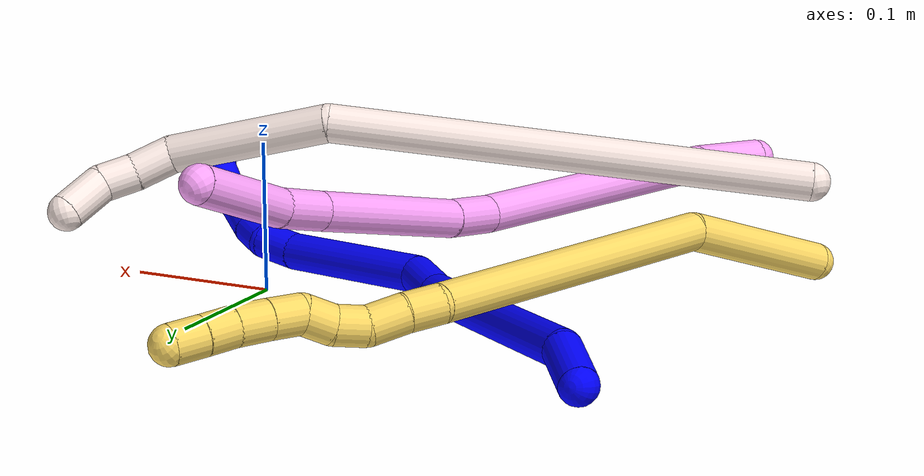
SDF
<sdf version="1.7">
 <world name="default">
  <model name="1">
   <static>0</static>
   <link name="1">
    <collision name="collision-cylinder-e_1_1_4">
     <pose>0.014006 0.000355 0.014058 -0.025251 0.783366 -0.01043</pose>
     <geometry><cylinder><radius>0.0125</radius><length>0.039695</length></cylinder></geometry>
     <surface>
      <friction><ode><mu>1.16</mu><mu2>1.16</mu2><slip1>0</slip1><slip2>0</slip2></ode></friction>
      <contact><ode><kp>1e+06</kp><kd>1</kd><max_vel>0</max_vel><min_depth>0.001</min_depth></ode></contact>
     </surface>
    </collision>
    <visual name="visual-cylinder-e_1_1_4">
     <pose>0.014006 0.000355 0.014058 -0.025251 0.783366 -0.01043</pose>
     <geometry><cylinder><radius>0.0125</radius><length>0.039695</length></cylinder></geometry>
     <material><ambient>0 0 1 1</ambient></material>
    </visual>
    <collision name="collision-cylinder-e_2_4_5">
     <pose>0.089215 -0.030558 0.082302 0.523384 0.774441 0.217588</pose>
     <geometry><cylinder><radius>0.0125</radius><length>0.175038</length></cylinder></geometry>
     <surface>
      <friction><ode><mu>1.16</mu><mu2>1.16</mu2><slip1>0</slip1><slip2>0</slip2></ode></friction>
      <contact><ode><kp>1e+06</kp><kd>1</kd><max_vel>0</max_vel><min_depth>0.001</min_depth></ode></contact>
     </surface>
    </collision>
    <visual name="visual-cylinder-e_2_4_5">
     <pose>0.089215 -0.030558 0.082302 0.523384 0.774441 0.217588</pose>
     <geometry><cylinder><radius>0.0125</radius><length>0.175038</length></cylinder></geometry>
     <material><ambient>0 0 1 1</ambient></material>
    </visual>
    <collision name="collision-cylinder-e_3_5_6">
     <pose>0.163448 -0.065194 0.147237 0.30358 0.85785 0.139682</pose>
     <geometry><cylinder><radius>0.0125</radius><length>0.034448</length></cylinder></geometry>
     <surface>
      <friction><ode><mu>1.16</mu><mu2>1.16</mu2><slip1>0</slip1><slip2>0</slip2></ode></friction>
      <contact><ode><kp>1e+06</kp><kd>1</kd><max_vel>0</max_vel><min_depth>0.001</min_depth></ode></contact>
     </surface>
    </collision>
    <visual name="visual-cylinder-e_3_5_6">
     <pose>0.163448 -0.065194 0.147237 0.30358 0.85785 0.139682</pose>
     <geometry><cylinder><radius>0.0125</radius><length>0.034448</length></cylinder></geometry>
     <material><ambient>0 0 1 1</ambient></material>
    </visual>
    <collision name="collision-cylinder-e_4_6_7">
     <pose>0.222959 -0.09494 0.170505 1.12773 1.00993 0.67253</pose>
     <geometry><cylinder><radius>0.0125</radius><length>0.109783</length></cylinder></geometry>
     <surface>
      <friction><ode><mu>1.16</mu><mu2>1.16</mu2><slip1>0</slip1><slip2>0</slip2></ode></friction>
      <contact><ode><kp>1e+06</kp><kd>1</kd><max_vel>0</max_vel><min_depth>0.001</min_depth></ode></contact>
     </surface>
    </collision>
    <visual name="visual-cylinder-e_4_6_7">
     <pose>0.222959 -0.09494 0.170505 1.12773 1.00993 0.67253</pose>
     <geometry><cylinder><radius>0.0125</radius><length>0.109783</length></cylinder></geometry>
     <material><ambient>0 0 1 1</ambient></material>
    </visual>
    <collision name="collision-cylinder-e_5_7_8">
     <pose>0.282149 -0.126117 0.184978 1.18383 1.18366 0.848945</pose>
     <geometry><cylinder><radius>0.0125</radius><length>0.027447</length></cylinder></geometry>
     <surface>
      <friction><ode><mu>1.16</mu><mu2>1.16</mu2><slip1>0</slip1><slip2>0</slip2></ode></friction>
      <contact><ode><kp>1e+06</kp><kd>1</kd><max_vel>0</max_vel><min_depth>0.001</min_depth></ode></contact>
     </surface>
    </collision>
    <visual name="visual-cylinder-e_5_7_8">
     <pose>0.282149 -0.126117 0.184978 1.18383 1.18366 0.848945</pose>
     <geometry><cylinder><radius>0.0125</radius><length>0.027447</length></cylinder></geometry>
     <material><ambient>0 0 1 1</ambient></material>
    </visual>
    <collision name="collision-cylinder-e_6_8_9">
     <pose>0.303941 -0.132624 0.191952 0.328146 1.04255 0.18958</pose>
     <geometry><cylinder><radius>0.0125</radius><length>0.021036</length></cylinder></geometry>
     <surface>
      <friction><ode><mu>1.16</mu><mu2>1.16</mu2><slip1>0</slip1><slip2>0</slip2></ode></friction>
      <contact><ode><kp>1e+06</kp><kd>1</kd><max_vel>0</max_vel><min_depth>0.001</min_depth></ode></contact>
     </surface>
    </collision>
    <visual name="visual-cylinder-e_6_8_9">
     <pose>0.303941 -0.132624 0.191952 0.328146 1.04255 0.18958</pose>
     <geometry><cylinder><radius>0.0125</radius><length>0.021036</length></cylinder></geometry>
     <material><ambient>0 0 1 1</ambient></material>
    </visual>
    <collision name="collision-cylinder-e_7_9_10">
     <pose>0.324826 -0.133435 0.203039 -0.146747 1.09143 -0.089209</pose>
     <geometry><cylinder><radius>0.0125</radius><length>0.026599</length></cylinder></geometry>
     <surface>
      <friction><ode><mu>1.16</mu><mu2>1.16</mu2><slip1>0</slip1><slip2>0</slip2></ode></friction>
      <contact><ode><kp>1e+06</kp><kd>1</kd><max_vel>0</max_vel><min_depth>0.001</min_depth></ode></contact>
     </surface>
    </collision>
    <visual name="visual-cylinder-e_7_9_10">
     <pose>0.324826 -0.133435 0.203039 -0.146747 1.09143 -0.089209</pose>
     <geometry><cylinder><radius>0.0125</radius><length>0.026599</length></cylinder></geometry>
     <material><ambient>0 0 1 1</ambient></material>
    </visual>
    <collision name="collision-cylinder-e_8_10_11">
     <pose>0.345293 -0.133079 0.214321 0.103287 1.02676 0.058269</pose>
     <geometry><cylinder><radius>0.0125</radius><length>0.020258</length></cylinder></geometry>
     <surface>
      <friction><ode><mu>1.16</mu><mu2>1.16</mu2><slip1>0</slip1><slip2>0</slip2></ode></friction>
      <contact><ode><kp>1e+06</kp><kd>1</kd><max_vel>0</max_vel><min_depth>0.001</min_depth></ode></contact>
     </surface>
    </collision>
    <visual name="visual-cylinder-e_8_10_11">
     <pose>0.345293 -0.133079 0.214321 0.103287 1.02676 0.058269</pose>
     <geometry><cylinder><radius>0.0125</radius><length>0.020258</length></cylinder></geometry>
     <material><ambient>0 0 1 1</ambient></material>
    </visual>
    <collision name="collision-cylinder-e_9_11_12">
     <pose>0.364605 -0.130731 0.224284 -0.546473 1.08967 -0.336458</pose>
     <geometry><cylinder><radius>0.0125</radius><length>0.024018</length></cylinder></geometry>
     <surface>
      <friction><ode><mu>1.16</mu><mu2>1.16</mu2><slip1>0</slip1><slip2>0</slip2></ode></friction>
      <contact><ode><kp>1e+06</kp><kd>1</kd><max_vel>0</max_vel><min_depth>0.001</min_depth></ode></contact>
     </surface>
    </collision>
    <visual name="visual-cylinder-e_9_11_12">
     <pose>0.364605 -0.130731 0.224284 -0.546473 1.08967 -0.336458</pose>
     <geometry><cylinder><radius>0.0125</radius><length>0.024018</length></cylinder></geometry>
     <material><ambient>0 0 1 1</ambient></material>
    </visual>
    <collision name="collision-cylinder-e_10_12_2">
     <pose>0.382175 -0.125233 0.236952 -0.31836 0.693014 -0.115803</pose>
     <geometry><cylinder><radius>0.0125</radius><length>0.021677</length></cylinder></geometry>
     <surface>
      <friction><ode><mu>1.16</mu><mu2>1.16</mu2><slip1>0</slip1><slip2>0</slip2></ode></friction>
      <contact><ode><kp>1e+06</kp><kd>1</kd><max_vel>0</max_vel><min_depth>0.001</min_depth></ode></contact>
     </surface>
    </collision>
    <visual name="visual-cylinder-e_10_12_2">
     <pose>0.382175 -0.125233 0.236952 -0.31836 0.693014 -0.115803</pose>
     <geometry><cylinder><radius>0.0125</radius><length>0.021677</length></cylinder></geometry>
     <material><ambient>0 0 1 1</ambient></material>
    </visual>
    <collision name="collision-sphere-2">
     <pose>0.389099 -0.122623 0.244871 0 -0 0</pose>
     <geometry><sphere><radius>0.0125</radius></sphere></geometry>
     <surface>
      <friction><ode><mu>1.16</mu><mu2>1.16</mu2><slip1>0</slip1><slip2>0</slip2></ode></friction>
      <contact><ode><kp>1e+06</kp><kd>1</kd><max_vel>0</max_vel><min_depth>0.001</min_depth></ode></contact>
     </surface>
    </collision>
    <visual name="visual-sphere-2">
     <pose>0.389099 -0.122623 0.244871 0 -0 0</pose>
     <geometry><sphere><radius>0.0125</radius></sphere></geometry>
     <material><ambient>0 0 1 1</ambient></material>
    </visual>
    <collision name="collision-sphere-12">
     <pose>0.375251 -0.127843 0.229032 0 -0 0</pose>
     <geometry><sphere><radius>0.0125</radius></sphere></geometry>
     <surface>
      <friction><ode><mu>1.16</mu><mu2>1.16</mu2><slip1>0</slip1><slip2>0</slip2></ode></friction>
      <contact><ode><kp>1e+06</kp><kd>1</kd><max_vel>0</max_vel><min_depth>0.001</min_depth></ode></contact>
     </surface>
    </collision>
    <visual name="visual-sphere-12">
     <pose>0.375251 -0.127843 0.229032 0 -0 0</pose>
     <geometry><sphere><radius>0.0125</radius></sphere></geometry>
     <material><ambient>0 0 1 1</ambient></material>
    </visual>
    <collision name="collision-sphere-11">
     <pose>0.353959 -0.133619 0.219536 0 -0 0</pose>
     <geometry><sphere><radius>0.0125</radius></sphere></geometry>
     <surface>
      <friction><ode><mu>1.16</mu><mu2>1.16</mu2><slip1>0</slip1><slip2>0</slip2></ode></friction>
      <contact><ode><kp>1e+06</kp><kd>1</kd><max_vel>0</max_vel><min_depth>0.001</min_depth></ode></contact>
     </surface>
    </collision>
    <visual name="visual-sphere-11">
     <pose>0.353959 -0.133619 0.219536 0 -0 0</pose>
     <geometry><sphere><radius>0.0125</radius></sphere></geometry>
     <material><ambient>0 0 1 1</ambient></material>
    </visual>
    <collision name="collision-sphere-10">
     <pose>0.336626 -0.132538 0.209107 0 -0 0</pose>
     <geometry><sphere><radius>0.0125</radius></sphere></geometry>
     <surface>
      <friction><ode><mu>1.16</mu><mu2>1.16</mu2><slip1>0</slip1><slip2>0</slip2></ode></friction>
      <contact><ode><kp>1e+06</kp><kd>1</kd><max_vel>0</max_vel><min_depth>0.001</min_depth></ode></contact>
     </surface>
    </collision>
    <visual name="visual-sphere-10">
     <pose>0.336626 -0.132538 0.209107 0 -0 0</pose>
     <geometry><sphere><radius>0.0125</radius></sphere></geometry>
     <material><ambient>0 0 1 1</ambient></material>
    </visual>
    <collision name="collision-sphere-9">
     <pose>0.313025 -0.134332 0.19697 0 -0 0</pose>
     <geometry><sphere><radius>0.0125</radius></sphere></geometry>
     <surface>
      <friction><ode><mu>1.16</mu><mu2>1.16</mu2><slip1>0</slip1><slip2>0</slip2></ode></friction>
      <contact><ode><kp>1e+06</kp><kd>1</kd><max_vel>0</max_vel><min_depth>0.001</min_depth></ode></contact>
     </surface>
    </collision>
    <visual name="visual-sphere-9">
     <pose>0.313025 -0.134332 0.19697 0 -0 0</pose>
     <geometry><sphere><radius>0.0125</radius></sphere></geometry>
     <material><ambient>0 0 1 1</ambient></material>
    </visual>
    <collision name="collision-sphere-4">
     <pose>0.028012 0.00071 0.028117 0 -0 0</pose>
     <geometry><sphere><radius>0.0125</radius></sphere></geometry>
     <surface>
      <friction><ode><mu>1.16</mu><mu2>1.16</mu2><slip1>0</slip1><slip2>0</slip2></ode></friction>
      <contact><ode><kp>1e+06</kp><kd>1</kd><max_vel>0</max_vel><min_depth>0.001</min_depth></ode></contact>
     </surface>
    </collision>
    <visual name="visual-sphere-4">
     <pose>0.028012 0.00071 0.028117 0 -0 0</pose>
     <geometry><sphere><radius>0.0125</radius></sphere></geometry>
     <material><ambient>0 0 1 1</ambient></material>
    </visual>
    <collision name="collision-sphere-1">
     <geometry><sphere><radius>0.0125</radius></sphere></geometry>
     <surface>
      <friction><ode><mu>1.16</mu><mu2>1.16</mu2><slip1>0</slip1><slip2>0</slip2></ode></friction>
      <contact><ode><kp>1e+06</kp><kd>1</kd><max_vel>0</max_vel><min_depth>0.001</min_depth></ode></contact>
     </surface>
    </collision>
    <visual name="visual-sphere-1">
     <geometry><sphere><radius>0.0125</radius></sphere></geometry>
     <material><ambient>0 0 1 1</ambient></material>
    </visual>
    <collision name="collision-sphere-8">
     <pose>0.294857 -0.130915 0.186934 0 -0 0</pose>
     <geometry><sphere><radius>0.0125</radius></sphere></geometry>
     <surface>
      <friction><ode><mu>1.16</mu><mu2>1.16</mu2><slip1>0</slip1><slip2>0</slip2></ode></friction>
      <contact><ode><kp>1e+06</kp><kd>1</kd><max_vel>0</max_vel><min_depth>0.001</min_depth></ode></contact>
     </surface>
    </collision>
    <visual name="visual-sphere-8">
     <pose>0.294857 -0.130915 0.186934 0 -0 0</pose>
     <geometry><sphere><radius>0.0125</radius></sphere></geometry>
     <material><ambient>0 0 1 1</ambient></material>
    </visual>
    <collision name="collision-sphere-5">
     <pose>0.150419 -0.061826 0.136487 0 -0 0</pose>
     <geometry><sphere><radius>0.0125</radius></sphere></geometry>
     <surface>
      <friction><ode><mu>1.16</mu><mu2>1.16</mu2><slip1>0</slip1><slip2>0</slip2></ode></friction>
      <contact><ode><kp>1e+06</kp><kd>1</kd><max_vel>0</max_vel><min_depth>0.001</min_depth></ode></contact>
     </surface>
    </collision>
    <visual name="visual-sphere-5">
     <pose>0.150419 -0.061826 0.136487 0 -0 0</pose>
     <geometry><sphere><radius>0.0125</radius></sphere></geometry>
     <material><ambient>0 0 1 1</ambient></material>
    </visual>
    <collision name="collision-sphere-6">
     <pose>0.176477 -0.068562 0.157988 0 -0 0</pose>
     <geometry><sphere><radius>0.0125</radius></sphere></geometry>
     <surface>
      <friction><ode><mu>1.16</mu><mu2>1.16</mu2><slip1>0</slip1><slip2>0</slip2></ode></friction>
      <contact><ode><kp>1e+06</kp><kd>1</kd><max_vel>0</max_vel><min_depth>0.001</min_depth></ode></contact>
     </surface>
    </collision>
    <visual name="visual-sphere-6">
     <pose>0.176477 -0.068562 0.157988 0 -0 0</pose>
     <geometry><sphere><radius>0.0125</radius></sphere></geometry>
     <material><ambient>0 0 1 1</ambient></material>
    </visual>
    <collision name="collision-sphere-7">
     <pose>0.269441 -0.121319 0.183023 0 -0 0</pose>
     <geometry><sphere><radius>0.0125</radius></sphere></geometry>
     <surface>
      <friction><ode><mu>1.16</mu><mu2>1.16</mu2><slip1>0</slip1><slip2>0</slip2></ode></friction>
      <contact><ode><kp>1e+06</kp><kd>1</kd><max_vel>0</max_vel><min_depth>0.001</min_depth></ode></contact>
     </surface>
    </collision>
    <visual name="visual-sphere-7">
     <pose>0.269441 -0.121319 0.183023 0 -0 0</pose>
     <geometry><sphere><radius>0.0125</radius></sphere></geometry>
     <material><ambient>0 0 1 1</ambient></material>
    </visual>
    <inertial>
     <pose>0.186188 -0.072709 0.136271 0 -0 0</pose>
     <mass>0.5</mass>
     <inertia>
      <ixx>0.000517</ixx>
      <ixy>0</ixy>
      <ixz>0</ixz>
      <iyy>0.000633</iyy>
      <iyz>0</iyz>
      <izz>-0.000196</izz>
     </inertia>
    </inertial>
   </link>
   <pose>-0.28162 0.129386 0.013076 1.76441 -0.514844 -0.103251</pose>
  </model>
  <model name="4">
   <static>0</static>
   <link name="4">
    <collision name="collision-cylinder-e_1_1_4">
     <pose>0.00927 0.003413 -0.022511 -2.99114 0.386656 -2.40661</pose>
     <geometry><cylinder><radius>0.0125</radius><length>0.049165</length></cylinder></geometry>
     <surface>
      <friction><ode><mu>1.16</mu><mu2>1.16</mu2><slip1>0</slip1><slip2>0</slip2></ode></friction>
      <contact><ode><kp>1e+06</kp><kd>1</kd><max_vel>0</max_vel><min_depth>0.001</min_depth></ode></contact>
     </surface>
    </collision>
    <visual name="visual-cylinder-e_1_1_4">
     <pose>0.00927 0.003413 -0.022511 -2.99114 0.386656 -2.40661</pose>
     <geometry><cylinder><radius>0.0125</radius><length>0.049165</length></cylinder></geometry>
     <material><ambient>1 0.65098 0.996078 1</ambient></material>
    </visual>
    <collision name="collision-cylinder-e_2_4_5">
     <pose>0.034489 0.026789 -0.141911 -2.93839 0.15985 -1.33184</pose>
     <geometry><cylinder><radius>0.0125</radius><length>0.200405</length></cylinder></geometry>
     <surface>
      <friction><ode><mu>1.16</mu><mu2>1.16</mu2><slip1>0</slip1><slip2>0</slip2></ode></friction>
      <contact><ode><kp>1e+06</kp><kd>1</kd><max_vel>0</max_vel><min_depth>0.001</min_depth></ode></contact>
     </surface>
    </collision>
    <visual name="visual-cylinder-e_2_4_5">
     <pose>0.034489 0.026789 -0.141911 -2.93839 0.15985 -1.33184</pose>
     <geometry><cylinder><radius>0.0125</radius><length>0.200405</length></cylinder></geometry>
     <material><ambient>1 0.65098 0.996078 1</ambient></material>
    </visual>
    <collision name="collision-cylinder-e_3_5_6">
     <pose>0.052216 0.052853 -0.255168 -2.78476 0.101439 -0.54879</pose>
     <geometry><cylinder><radius>0.0125</radius><length>0.035116</length></cylinder></geometry>
     <surface>
      <friction><ode><mu>1.16</mu><mu2>1.16</mu2><slip1>0</slip1><slip2>0</slip2></ode></friction>
      <contact><ode><kp>1e+06</kp><kd>1</kd><max_vel>0</max_vel><min_depth>0.001</min_depth></ode></contact>
     </surface>
    </collision>
    <visual name="visual-cylinder-e_3_5_6">
     <pose>0.052216 0.052853 -0.255168 -2.78476 0.101439 -0.54879</pose>
     <geometry><cylinder><radius>0.0125</radius><length>0.035116</length></cylinder></geometry>
     <material><ambient>1 0.65098 0.996078 1</ambient></material>
    </visual>
    <collision name="collision-cylinder-e_4_6_7">
     <pose>0.064598 0.083353 -0.321999 -2.69125 0.186975 -0.777059</pose>
     <geometry><cylinder><radius>0.0125</radius><length>0.114092</length></cylinder></geometry>
     <surface>
      <friction><ode><mu>1.16</mu><mu2>1.16</mu2><slip1>0</slip1><slip2>0</slip2></ode></friction>
      <contact><ode><kp>1e+06</kp><kd>1</kd><max_vel>0</max_vel><min_depth>0.001</min_depth></ode></contact>
     </surface>
    </collision>
    <visual name="visual-cylinder-e_4_6_7">
     <pose>0.064598 0.083353 -0.321999 -2.69125 0.186975 -0.777059</pose>
     <geometry><cylinder><radius>0.0125</radius><length>0.114092</length></cylinder></geometry>
     <material><ambient>1 0.65098 0.996078 1</ambient></material>
    </visual>
    <collision name="collision-cylinder-e_5_7_8">
     <pose>0.078174 0.11506 -0.3869 -2.67296 0.181604 -0.72882</pose>
     <geometry><cylinder><radius>0.0125</radius><length>0.032906</length></cylinder></geometry>
     <surface>
      <friction><ode><mu>1.16</mu><mu2>1.16</mu2><slip1>0</slip1><slip2>0</slip2></ode></friction>
      <contact><ode><kp>1e+06</kp><kd>1</kd><max_vel>0</max_vel><min_depth>0.001</min_depth></ode></contact>
     </surface>
    </collision>
    <visual name="visual-cylinder-e_5_7_8">
     <pose>0.078174 0.11506 -0.3869 -2.67296 0.181604 -0.72882</pose>
     <geometry><cylinder><radius>0.0125</radius><length>0.032906</length></cylinder></geometry>
     <material><ambient>1 0.65098 0.996078 1</ambient></material>
    </visual>
    <collision name="collision-cylinder-e_6_8_2">
     <pose>0.08758 0.142191 -0.428402 -2.50944 0.189495 -0.565591</pose>
     <geometry><cylinder><radius>0.0125</radius><length>0.068315</length></cylinder></geometry>
     <surface>
      <friction><ode><mu>1.16</mu><mu2>1.16</mu2><slip1>0</slip1><slip2>0</slip2></ode></friction>
      <contact><ode><kp>1e+06</kp><kd>1</kd><max_vel>0</max_vel><min_depth>0.001</min_depth></ode></contact>
     </surface>
    </collision>
    <visual name="visual-cylinder-e_6_8_2">
     <pose>0.08758 0.142191 -0.428402 -2.50944 0.189495 -0.565591</pose>
     <geometry><cylinder><radius>0.0125</radius><length>0.068315</length></cylinder></geometry>
     <material><ambient>1 0.65098 0.996078 1</ambient></material>
    </visual>
    <collision name="collision-sphere-2">
     <pose>0.094014 0.162013 -0.455466 0 -0 0</pose>
     <geometry><sphere><radius>0.0125</radius></sphere></geometry>
     <surface>
      <friction><ode><mu>1.16</mu><mu2>1.16</mu2><slip1>0</slip1><slip2>0</slip2></ode></friction>
      <contact><ode><kp>1e+06</kp><kd>1</kd><max_vel>0</max_vel><min_depth>0.001</min_depth></ode></contact>
     </surface>
    </collision>
    <visual name="visual-sphere-2">
     <pose>0.094014 0.162013 -0.455466 0 -0 0</pose>
     <geometry><sphere><radius>0.0125</radius></sphere></geometry>
     <material><ambient>1 0.65098 0.996078 1</ambient></material>
    </visual>
    <collision name="collision-sphere-4">
     <pose>0.01854 0.006825 -0.045021 0 -0 0</pose>
     <geometry><sphere><radius>0.0125</radius></sphere></geometry>
     <surface>
      <friction><ode><mu>1.16</mu><mu2>1.16</mu2><slip1>0</slip1><slip2>0</slip2></ode></friction>
      <contact><ode><kp>1e+06</kp><kd>1</kd><max_vel>0</max_vel><min_depth>0.001</min_depth></ode></contact>
     </surface>
    </collision>
    <visual name="visual-sphere-4">
     <pose>0.01854 0.006825 -0.045021 0 -0 0</pose>
     <geometry><sphere><radius>0.0125</radius></sphere></geometry>
     <material><ambient>1 0.65098 0.996078 1</ambient></material>
    </visual>
    <collision name="collision-sphere-1">
     <geometry><sphere><radius>0.0125</radius></sphere></geometry>
     <surface>
      <friction><ode><mu>1.16</mu><mu2>1.16</mu2><slip1>0</slip1><slip2>0</slip2></ode></friction>
      <contact><ode><kp>1e+06</kp><kd>1</kd><max_vel>0</max_vel><min_depth>0.001</min_depth></ode></contact>
     </surface>
    </collision>
    <visual name="visual-sphere-1">
     <geometry><sphere><radius>0.0125</radius></sphere></geometry>
     <material><ambient>1 0.65098 0.996078 1</ambient></material>
    </visual>
    <collision name="collision-sphere-8">
     <pose>0.081146 0.122369 -0.401338 0 -0 0</pose>
     <geometry><sphere><radius>0.0125</radius></sphere></geometry>
     <surface>
      <friction><ode><mu>1.16</mu><mu2>1.16</mu2><slip1>0</slip1><slip2>0</slip2></ode></friction>
      <contact><ode><kp>1e+06</kp><kd>1</kd><max_vel>0</max_vel><min_depth>0.001</min_depth></ode></contact>
     </surface>
    </collision>
    <visual name="visual-sphere-8">
     <pose>0.081146 0.122369 -0.401338 0 -0 0</pose>
     <geometry><sphere><radius>0.0125</radius></sphere></geometry>
     <material><ambient>1 0.65098 0.996078 1</ambient></material>
    </visual>
    <collision name="collision-sphere-5">
     <pose>0.050438 0.046752 -0.238801 0 -0 0</pose>
     <geometry><sphere><radius>0.0125</radius></sphere></geometry>
     <surface>
      <friction><ode><mu>1.16</mu><mu2>1.16</mu2><slip1>0</slip1><slip2>0</slip2></ode></friction>
      <contact><ode><kp>1e+06</kp><kd>1</kd><max_vel>0</max_vel><min_depth>0.001</min_depth></ode></contact>
     </surface>
    </collision>
    <visual name="visual-sphere-5">
     <pose>0.050438 0.046752 -0.238801 0 -0 0</pose>
     <geometry><sphere><radius>0.0125</radius></sphere></geometry>
     <material><ambient>1 0.65098 0.996078 1</ambient></material>
    </visual>
    <collision name="collision-sphere-6">
     <pose>0.053994 0.058955 -0.271536 0 -0 0</pose>
     <geometry><sphere><radius>0.0125</radius></sphere></geometry>
     <surface>
      <friction><ode><mu>1.16</mu><mu2>1.16</mu2><slip1>0</slip1><slip2>0</slip2></ode></friction>
      <contact><ode><kp>1e+06</kp><kd>1</kd><max_vel>0</max_vel><min_depth>0.001</min_depth></ode></contact>
     </surface>
    </collision>
    <visual name="visual-sphere-6">
     <pose>0.053994 0.058955 -0.271536 0 -0 0</pose>
     <geometry><sphere><radius>0.0125</radius></sphere></geometry>
     <material><ambient>1 0.65098 0.996078 1</ambient></material>
    </visual>
    <collision name="collision-sphere-7">
     <pose>0.075203 0.107751 -0.372462 0 -0 0</pose>
     <geometry><sphere><radius>0.0125</radius></sphere></geometry>
     <surface>
      <friction><ode><mu>1.16</mu><mu2>1.16</mu2><slip1>0</slip1><slip2>0</slip2></ode></friction>
      <contact><ode><kp>1e+06</kp><kd>1</kd><max_vel>0</max_vel><min_depth>0.001</min_depth></ode></contact>
     </surface>
    </collision>
    <visual name="visual-sphere-7">
     <pose>0.075203 0.107751 -0.372462 0 -0 0</pose>
     <geometry><sphere><radius>0.0125</radius></sphere></geometry>
     <material><ambient>1 0.65098 0.996078 1</ambient></material>
    </visual>
    <inertial>
     <pose>0.050254 0.060805 -0.234485 0 -0 0</pose>
     <mass>0.5</mass>
     <inertia>
      <ixx>-0.000488</ixx>
      <ixy>0</ixy>
      <ixz>0</ixz>
      <iyy>-0.000981</iyy>
      <iyz>0</iyz>
      <izz>-0.000391</izz>
     </inertia>
    </inertial>
   </link>
   <pose>-0.238156 -0.287723 0.056408 1.28206 -0.362634 -0.220541</pose>
  </model>
  <model name="5">
   <static>0</static>
   <link name="5">
    <collision name="collision-cylinder-e_1_1_4">
     <pose>0.003881 0.026973 -0.046713 -2.61795 0.071825 -0.266556</pose>
     <geometry><cylinder><radius>0.0125</radius><length>0.108162</length></cylinder></geometry>
     <surface>
      <friction><ode><mu>1.16</mu><mu2>1.16</mu2><slip1>0</slip1><slip2>0</slip2></ode></friction>
      <contact><ode><kp>1e+06</kp><kd>1</kd><max_vel>0</max_vel><min_depth>0.001</min_depth></ode></contact>
     </surface>
    </collision>
    <visual name="visual-cylinder-e_1_1_4">
     <pose>0.003881 0.026973 -0.046713 -2.61795 0.071825 -0.266556</pose>
     <geometry><cylinder><radius>0.0125</radius><length>0.108162</length></cylinder></geometry>
     <material><ambient>1 0.858824 0.4 1</ambient></material>
    </visual>
    <collision name="collision-cylinder-e_2_4_5">
     <pose>0.056308 0.110746 -0.172773 -2.52031 0.461643 -1.26381</pose>
     <geometry><cylinder><radius>0.0125</radius><length>0.217979</length></cylinder></geometry>
     <surface>
      <friction><ode><mu>1.16</mu><mu2>1.16</mu2><slip1>0</slip1><slip2>0</slip2></ode></friction>
      <contact><ode><kp>1e+06</kp><kd>1</kd><max_vel>0</max_vel><min_depth>0.001</min_depth></ode></contact>
     </surface>
    </collision>
    <visual name="visual-cylinder-e_2_4_5">
     <pose>0.056308 0.110746 -0.172773 -2.52031 0.461643 -1.26381</pose>
     <geometry><cylinder><radius>0.0125</radius><length>0.217979</length></cylinder></geometry>
     <material><ambient>1 0.858824 0.4 1</ambient></material>
    </visual>
    <collision name="collision-cylinder-e_3_5_6">
     <pose>0.108724 0.176151 -0.259065 -2.24991 0.336564 -0.683063</pose>
     <geometry><cylinder><radius>0.0125</radius><length>0.023433</length></cylinder></geometry>
     <surface>
      <friction><ode><mu>1.16</mu><mu2>1.16</mu2><slip1>0</slip1><slip2>0</slip2></ode></friction>
      <contact><ode><kp>1e+06</kp><kd>1</kd><max_vel>0</max_vel><min_depth>0.001</min_depth></ode></contact>
     </surface>
    </collision>
    <visual name="visual-cylinder-e_3_5_6">
     <pose>0.108724 0.176151 -0.259065 -2.24991 0.336564 -0.683063</pose>
     <geometry><cylinder><radius>0.0125</radius><length>0.023433</length></cylinder></geometry>
     <material><ambient>1 0.858824 0.4 1</ambient></material>
    </visual>
    <collision name="collision-cylinder-e_4_6_7">
     <pose>0.117188 0.194564 -0.27234 -2.14384 0.375078 -0.670317</pose>
     <geometry><cylinder><radius>0.0125</radius><length>0.025088</length></cylinder></geometry>
     <surface>
      <friction><ode><mu>1.16</mu><mu2>1.16</mu2><slip1>0</slip1><slip2>0</slip2></ode></friction>
      <contact><ode><kp>1e+06</kp><kd>1</kd><max_vel>0</max_vel><min_depth>0.001</min_depth></ode></contact>
     </surface>
    </collision>
    <visual name="visual-cylinder-e_4_6_7">
     <pose>0.117188 0.194564 -0.27234 -2.14384 0.375078 -0.670317</pose>
     <geometry><cylinder><radius>0.0125</radius><length>0.025088</length></cylinder></geometry>
     <material><ambient>1 0.858824 0.4 1</ambient></material>
    </visual>
    <collision name="collision-cylinder-e_5_7_8">
     <pose>0.122122 0.212086 -0.285392 -2.28764 0.033061 -0.072641</pose>
     <geometry><cylinder><radius>0.0125</radius><length>0.020478</length></cylinder></geometry>
     <surface>
      <friction><ode><mu>1.16</mu><mu2>1.16</mu2><slip1>0</slip1><slip2>0</slip2></ode></friction>
      <contact><ode><kp>1e+06</kp><kd>1</kd><max_vel>0</max_vel><min_depth>0.001</min_depth></ode></contact>
     </surface>
    </collision>
    <visual name="visual-cylinder-e_5_7_8">
     <pose>0.122122 0.212086 -0.285392 -2.28764 0.033061 -0.072641</pose>
     <geometry><cylinder><radius>0.0125</radius><length>0.020478</length></cylinder></geometry>
     <material><ambient>1 0.858824 0.4 1</ambient></material>
    </visual>
    <collision name="collision-cylinder-e_6_8_9">
     <pose>0.120921 0.22551 -0.300365 -2.53631 -0.152323 0.479394</pose>
     <geometry><cylinder><radius>0.0125</radius><length>0.0203</length></cylinder></geometry>
     <surface>
      <friction><ode><mu>1.16</mu><mu2>1.16</mu2><slip1>0</slip1><slip2>0</slip2></ode></friction>
      <contact><ode><kp>1e+06</kp><kd>1</kd><max_vel>0</max_vel><min_depth>0.001</min_depth></ode></contact>
     </surface>
    </collision>
    <visual name="visual-cylinder-e_6_8_9">
     <pose>0.120921 0.22551 -0.300365 -2.53631 -0.152323 0.479394</pose>
     <geometry><cylinder><radius>0.0125</radius><length>0.0203</length></cylinder></geometry>
     <material><ambient>1 0.858824 0.4 1</ambient></material>
    </visual>
    <collision name="collision-cylinder-e_7_9_10">
     <pose>0.122827 0.238249 -0.316287 -2.39977 0.319842 -0.786302</pose>
     <geometry><cylinder><radius>0.0125</radius><length>0.021924</length></cylinder></geometry>
     <surface>
      <friction><ode><mu>1.16</mu><mu2>1.16</mu2><slip1>0</slip1><slip2>0</slip2></ode></friction>
      <contact><ode><kp>1e+06</kp><kd>1</kd><max_vel>0</max_vel><min_depth>0.001</min_depth></ode></contact>
     </surface>
    </collision>
    <visual name="visual-cylinder-e_7_9_10">
     <pose>0.122827 0.238249 -0.316287 -2.39977 0.319842 -0.786302</pose>
     <geometry><cylinder><radius>0.0125</radius><length>0.021924</length></cylinder></geometry>
     <material><ambient>1 0.858824 0.4 1</ambient></material>
    </visual>
    <collision name="collision-cylinder-e_8_10_11">
     <pose>0.129923 0.252426 -0.331361 -2.37377 0.340823 -0.805418</pose>
     <geometry><cylinder><radius>0.0125</radius><length>0.021833</length></cylinder></geometry>
     <surface>
      <friction><ode><mu>1.16</mu><mu2>1.16</mu2><slip1>0</slip1><slip2>0</slip2></ode></friction>
      <contact><ode><kp>1e+06</kp><kd>1</kd><max_vel>0</max_vel><min_depth>0.001</min_depth></ode></contact>
     </surface>
    </collision>
    <visual name="visual-cylinder-e_8_10_11">
     <pose>0.129923 0.252426 -0.331361 -2.37377 0.340823 -0.805418</pose>
     <geometry><cylinder><radius>0.0125</radius><length>0.021833</length></cylinder></geometry>
     <material><ambient>1 0.858824 0.4 1</ambient></material>
    </visual>
    <collision name="collision-cylinder-e_9_11_12">
     <pose>0.13771 0.266007 -0.345273 -2.36197 0.424598 -0.96635</pose>
     <geometry><cylinder><radius>0.0125</radius><length>0.020092</length></cylinder></geometry>
     <surface>
      <friction><ode><mu>1.16</mu><mu2>1.16</mu2><slip1>0</slip1><slip2>0</slip2></ode></friction>
      <contact><ode><kp>1e+06</kp><kd>1</kd><max_vel>0</max_vel><min_depth>0.001</min_depth></ode></contact>
     </surface>
    </collision>
    <visual name="visual-cylinder-e_9_11_12">
     <pose>0.13771 0.266007 -0.345273 -2.36197 0.424598 -0.96635</pose>
     <geometry><cylinder><radius>0.0125</radius><length>0.020092</length></cylinder></geometry>
     <material><ambient>1 0.858824 0.4 1</ambient></material>
    </visual>
    <collision name="collision-cylinder-e_10_12_2">
     <pose>0.14583 0.27938 -0.358359 -2.32946 0.394641 -0.87048</pose>
     <geometry><cylinder><radius>0.0125</radius><length>0.02071</length></cylinder></geometry>
     <surface>
      <friction><ode><mu>1.16</mu><mu2>1.16</mu2><slip1>0</slip1><slip2>0</slip2></ode></friction>
      <contact><ode><kp>1e+06</kp><kd>1</kd><max_vel>0</max_vel><min_depth>0.001</min_depth></ode></contact>
     </surface>
    </collision>
    <visual name="visual-cylinder-e_10_12_2">
     <pose>0.14583 0.27938 -0.358359 -2.32946 0.394641 -0.87048</pose>
     <geometry><cylinder><radius>0.0125</radius><length>0.02071</length></cylinder></geometry>
     <material><ambient>1 0.858824 0.4 1</ambient></material>
    </visual>
    <collision name="collision-sphere-2">
     <pose>0.149812 0.286318 -0.364936 0 -0 0</pose>
     <geometry><sphere><radius>0.0125</radius></sphere></geometry>
     <surface>
      <friction><ode><mu>1.16</mu><mu2>1.16</mu2><slip1>0</slip1><slip2>0</slip2></ode></friction>
      <contact><ode><kp>1e+06</kp><kd>1</kd><max_vel>0</max_vel><min_depth>0.001</min_depth></ode></contact>
     </surface>
    </collision>
    <visual name="visual-sphere-2">
     <pose>0.149812 0.286318 -0.364936 0 -0 0</pose>
     <geometry><sphere><radius>0.0125</radius></sphere></geometry>
     <material><ambient>1 0.858824 0.4 1</ambient></material>
    </visual>
    <collision name="collision-sphere-12">
     <pose>0.141849 0.272443 -0.351783 0 -0 0</pose>
     <geometry><sphere><radius>0.0125</radius></sphere></geometry>
     <surface>
      <friction><ode><mu>1.16</mu><mu2>1.16</mu2><slip1>0</slip1><slip2>0</slip2></ode></friction>
      <contact><ode><kp>1e+06</kp><kd>1</kd><max_vel>0</max_vel><min_depth>0.001</min_depth></ode></contact>
     </surface>
    </collision>
    <visual name="visual-sphere-12">
     <pose>0.141849 0.272443 -0.351783 0 -0 0</pose>
     <geometry><sphere><radius>0.0125</radius></sphere></geometry>
     <material><ambient>1 0.858824 0.4 1</ambient></material>
    </visual>
    <collision name="collision-sphere-11">
     <pose>0.133572 0.259572 -0.338762 0 -0 0</pose>
     <geometry><sphere><radius>0.0125</radius></sphere></geometry>
     <surface>
      <friction><ode><mu>1.16</mu><mu2>1.16</mu2><slip1>0</slip1><slip2>0</slip2></ode></friction>
      <contact><ode><kp>1e+06</kp><kd>1</kd><max_vel>0</max_vel><min_depth>0.001</min_depth></ode></contact>
     </surface>
    </collision>
    <visual name="visual-sphere-11">
     <pose>0.133572 0.259572 -0.338762 0 -0 0</pose>
     <geometry><sphere><radius>0.0125</radius></sphere></geometry>
     <material><ambient>1 0.858824 0.4 1</ambient></material>
    </visual>
    <collision name="collision-sphere-10">
     <pose>0.126274 0.245279 -0.323959 0 -0 0</pose>
     <geometry><sphere><radius>0.0125</radius></sphere></geometry>
     <surface>
      <friction><ode><mu>1.16</mu><mu2>1.16</mu2><slip1>0</slip1><slip2>0</slip2></ode></friction>
      <contact><ode><kp>1e+06</kp><kd>1</kd><max_vel>0</max_vel><min_depth>0.001</min_depth></ode></contact>
     </surface>
    </collision>
    <visual name="visual-sphere-10">
     <pose>0.126274 0.245279 -0.323959 0 -0 0</pose>
     <geometry><sphere><radius>0.0125</radius></sphere></geometry>
     <material><ambient>1 0.858824 0.4 1</ambient></material>
    </visual>
    <collision name="collision-sphere-9">
     <pose>0.119381 0.231218 -0.308615 0 -0 0</pose>
     <geometry><sphere><radius>0.0125</radius></sphere></geometry>
     <surface>
      <friction><ode><mu>1.16</mu><mu2>1.16</mu2><slip1>0</slip1><slip2>0</slip2></ode></friction>
      <contact><ode><kp>1e+06</kp><kd>1</kd><max_vel>0</max_vel><min_depth>0.001</min_depth></ode></contact>
     </surface>
    </collision>
    <visual name="visual-sphere-9">
     <pose>0.119381 0.231218 -0.308615 0 -0 0</pose>
     <geometry><sphere><radius>0.0125</radius></sphere></geometry>
     <material><ambient>1 0.858824 0.4 1</ambient></material>
    </visual>
    <collision name="collision-sphere-4">
     <pose>0.007762 0.053946 -0.093427 0 -0 0</pose>
     <geometry><sphere><radius>0.0125</radius></sphere></geometry>
     <surface>
      <friction><ode><mu>1.16</mu><mu2>1.16</mu2><slip1>0</slip1><slip2>0</slip2></ode></friction>
      <contact><ode><kp>1e+06</kp><kd>1</kd><max_vel>0</max_vel><min_depth>0.001</min_depth></ode></contact>
     </surface>
    </collision>
    <visual name="visual-sphere-4">
     <pose>0.007762 0.053946 -0.093427 0 -0 0</pose>
     <geometry><sphere><radius>0.0125</radius></sphere></geometry>
     <material><ambient>1 0.858824 0.4 1</ambient></material>
    </visual>
    <collision name="collision-sphere-1">
     <geometry><sphere><radius>0.0125</radius></sphere></geometry>
     <surface>
      <friction><ode><mu>1.16</mu><mu2>1.16</mu2><slip1>0</slip1><slip2>0</slip2></ode></friction>
      <contact><ode><kp>1e+06</kp><kd>1</kd><max_vel>0</max_vel><min_depth>0.001</min_depth></ode></contact>
     </surface>
    </collision>
    <visual name="visual-sphere-1">
     <geometry><sphere><radius>0.0125</radius></sphere></geometry>
     <material><ambient>1 0.858824 0.4 1</ambient></material>
    </visual>
    <collision name="collision-sphere-8">
     <pose>0.122461 0.219801 -0.292115 0 -0 0</pose>
     <geometry><sphere><radius>0.0125</radius></sphere></geometry>
     <surface>
      <friction><ode><mu>1.16</mu><mu2>1.16</mu2><slip1>0</slip1><slip2>0</slip2></ode></friction>
      <contact><ode><kp>1e+06</kp><kd>1</kd><max_vel>0</max_vel><min_depth>0.001</min_depth></ode></contact>
     </surface>
    </collision>
    <visual name="visual-sphere-8">
     <pose>0.122461 0.219801 -0.292115 0 -0 0</pose>
     <geometry><sphere><radius>0.0125</radius></sphere></geometry>
     <material><ambient>1 0.858824 0.4 1</ambient></material>
    </visual>
    <collision name="collision-sphere-5">
     <pose>0.104854 0.167546 -0.252119 0 -0 0</pose>
     <geometry><sphere><radius>0.0125</radius></sphere></geometry>
     <surface>
      <friction><ode><mu>1.16</mu><mu2>1.16</mu2><slip1>0</slip1><slip2>0</slip2></ode></friction>
      <contact><ode><kp>1e+06</kp><kd>1</kd><max_vel>0</max_vel><min_depth>0.001</min_depth></ode></contact>
     </surface>
    </collision>
    <visual name="visual-sphere-5">
     <pose>0.104854 0.167546 -0.252119 0 -0 0</pose>
     <geometry><sphere><radius>0.0125</radius></sphere></geometry>
     <material><ambient>1 0.858824 0.4 1</ambient></material>
    </visual>
    <collision name="collision-sphere-6">
     <pose>0.112593 0.184756 -0.266011 0 -0 0</pose>
     <geometry><sphere><radius>0.0125</radius></sphere></geometry>
     <surface>
      <friction><ode><mu>1.16</mu><mu2>1.16</mu2><slip1>0</slip1><slip2>0</slip2></ode></friction>
      <contact><ode><kp>1e+06</kp><kd>1</kd><max_vel>0</max_vel><min_depth>0.001</min_depth></ode></contact>
     </surface>
    </collision>
    <visual name="visual-sphere-6">
     <pose>0.112593 0.184756 -0.266011 0 -0 0</pose>
     <geometry><sphere><radius>0.0125</radius></sphere></geometry>
     <material><ambient>1 0.858824 0.4 1</ambient></material>
    </visual>
    <collision name="collision-sphere-7">
     <pose>0.121784 0.204371 -0.278668 0 -0 0</pose>
     <geometry><sphere><radius>0.0125</radius></sphere></geometry>
     <surface>
      <friction><ode><mu>1.16</mu><mu2>1.16</mu2><slip1>0</slip1><slip2>0</slip2></ode></friction>
      <contact><ode><kp>1e+06</kp><kd>1</kd><max_vel>0</max_vel><min_depth>0.001</min_depth></ode></contact>
     </surface>
    </collision>
    <visual name="visual-sphere-7">
     <pose>0.121784 0.204371 -0.278668 0 -0 0</pose>
     <geometry><sphere><radius>0.0125</radius></sphere></geometry>
     <material><ambient>1 0.858824 0.4 1</ambient></material>
    </visual>
    <inertial>
     <pose>0.068907 0.133706 -0.192173 0 -0 0</pose>
     <mass>0.5</mass>
     <inertia>
      <ixx>-0.000416</ixx>
      <ixy>0</ixy>
      <ixz>0</ixz>
      <iyy>-0.000851</iyy>
      <iyz>0</iyz>
      <izz>-0.000947</izz>
     </inertia>
    </inertial>
   </link>
   <pose>-0.316781 -0.188109 0.012535 -2.62172 0.74922 2.13878</pose>
  </model>
  <model name="11">
   <static>0</static>
   <link name="11">
    <collision name="collision-cylinder-e_1_1_4">
     <pose>0.11964 0.079819 0.057726 -0.944664 0.881981 -0.473249</pose>
     <geometry><cylinder><radius>0.0125</radius><length>0.309949</length></cylinder></geometry>
     <surface>
      <friction><ode><mu>1.16</mu><mu2>1.16</mu2><slip1>0</slip1><slip2>0</slip2></ode></friction>
      <contact><ode><kp>1e+06</kp><kd>1</kd><max_vel>0</max_vel><min_depth>0.001</min_depth></ode></contact>
     </surface>
    </collision>
    <visual name="visual-cylinder-e_1_1_4">
     <pose>0.11964 0.079819 0.057726 -0.944664 0.881981 -0.473249</pose>
     <geometry><cylinder><radius>0.0125</radius><length>0.309949</length></cylinder></geometry>
     <material><ambient>1 0.933333 0.909804 1</ambient></material>
    </visual>
    <collision name="collision-cylinder-e_2_4_5">
     <pose>0.291608 0.172415 0.123903 -0.986402 1.286 -0.765682</pose>
     <geometry><cylinder><radius>0.0125</radius><length>0.109047</length></cylinder></geometry>
     <surface>
      <friction><ode><mu>1.16</mu><mu2>1.16</mu2><slip1>0</slip1><slip2>0</slip2></ode></friction>
      <contact><ode><kp>1e+06</kp><kd>1</kd><max_vel>0</max_vel><min_depth>0.001</min_depth></ode></contact>
     </surface>
    </collision>
    <visual name="visual-cylinder-e_2_4_5">
     <pose>0.291608 0.172415 0.123903 -0.986402 1.286 -0.765682</pose>
     <geometry><cylinder><radius>0.0125</radius><length>0.109047</length></cylinder></geometry>
     <material><ambient>1 0.933333 0.909804 1</ambient></material>
    </visual>
    <collision name="collision-cylinder-e_3_5_6">
     <pose>0.354977 0.192471 0.129472 -1.94776 0.953989 -1.30027</pose>
     <geometry><cylinder><radius>0.0125</radius><length>0.027072</length></cylinder></geometry>
     <surface>
      <friction><ode><mu>1.16</mu><mu2>1.16</mu2><slip1>0</slip1><slip2>0</slip2></ode></friction>
      <contact><ode><kp>1e+06</kp><kd>1</kd><max_vel>0</max_vel><min_depth>0.001</min_depth></ode></contact>
     </surface>
    </collision>
    <visual name="visual-cylinder-e_3_5_6">
     <pose>0.354977 0.192471 0.129472 -1.94776 0.953989 -1.30027</pose>
     <geometry><cylinder><radius>0.0125</radius><length>0.027072</length></cylinder></geometry>
     <material><ambient>1 0.933333 0.909804 1</ambient></material>
    </visual>
    <collision name="collision-cylinder-e_4_6_7">
     <pose>0.3745 0.207407 0.124986 -1.77732 0.825775 -0.989275</pose>
     <geometry><cylinder><radius>0.0125</radius><length>0.023076</length></cylinder></geometry>
     <surface>
      <friction><ode><mu>1.16</mu><mu2>1.16</mu2><slip1>0</slip1><slip2>0</slip2></ode></friction>
      <contact><ode><kp>1e+06</kp><kd>1</kd><max_vel>0</max_vel><min_depth>0.001</min_depth></ode></contact>
     </surface>
    </collision>
    <visual name="visual-cylinder-e_4_6_7">
     <pose>0.3745 0.207407 0.124986 -1.77732 0.825775 -0.989275</pose>
     <geometry><cylinder><radius>0.0125</radius><length>0.023076</length></cylinder></geometry>
     <material><ambient>1 0.933333 0.909804 1</ambient></material>
    </visual>
    <collision name="collision-cylinder-e_5_7_2">
     <pose>0.390841 0.225727 0.115473 -2.20891 0.534548 -0.996426</pose>
     <geometry><cylinder><radius>0.0125</radius><length>0.030856</length></cylinder></geometry>
     <surface>
      <friction><ode><mu>1.16</mu><mu2>1.16</mu2><slip1>0</slip1><slip2>0</slip2></ode></friction>
      <contact><ode><kp>1e+06</kp><kd>1</kd><max_vel>0</max_vel><min_depth>0.001</min_depth></ode></contact>
     </surface>
    </collision>
    <visual name="visual-cylinder-e_5_7_2">
     <pose>0.390841 0.225727 0.115473 -2.20891 0.534548 -0.996426</pose>
     <geometry><cylinder><radius>0.0125</radius><length>0.030856</length></cylinder></geometry>
     <material><ambient>1 0.933333 0.909804 1</ambient></material>
    </visual>
    <collision name="collision-sphere-2">
     <pose>0.398701 0.236391 0.107565 0 -0 0</pose>
     <geometry><sphere><radius>0.0125</radius></sphere></geometry>
     <surface>
      <friction><ode><mu>1.16</mu><mu2>1.16</mu2><slip1>0</slip1><slip2>0</slip2></ode></friction>
      <contact><ode><kp>1e+06</kp><kd>1</kd><max_vel>0</max_vel><min_depth>0.001</min_depth></ode></contact>
     </surface>
    </collision>
    <visual name="visual-sphere-2">
     <pose>0.398701 0.236391 0.107565 0 -0 0</pose>
     <geometry><sphere><radius>0.0125</radius></sphere></geometry>
     <material><ambient>1 0.933333 0.909804 1</ambient></material>
    </visual>
    <collision name="collision-sphere-7">
     <pose>0.382981 0.215064 0.123382 0 -0 0</pose>
     <geometry><sphere><radius>0.0125</radius></sphere></geometry>
     <surface>
      <friction><ode><mu>1.16</mu><mu2>1.16</mu2><slip1>0</slip1><slip2>0</slip2></ode></friction>
      <contact><ode><kp>1e+06</kp><kd>1</kd><max_vel>0</max_vel><min_depth>0.001</min_depth></ode></contact>
     </surface>
    </collision>
    <visual name="visual-sphere-7">
     <pose>0.382981 0.215064 0.123382 0 -0 0</pose>
     <geometry><sphere><radius>0.0125</radius></sphere></geometry>
     <material><ambient>1 0.933333 0.909804 1</ambient></material>
    </visual>
    <collision name="collision-sphere-6">
     <pose>0.366019 0.199751 0.12659 0 -0 0</pose>
     <geometry><sphere><radius>0.0125</radius></sphere></geometry>
     <surface>
      <friction><ode><mu>1.16</mu><mu2>1.16</mu2><slip1>0</slip1><slip2>0</slip2></ode></friction>
      <contact><ode><kp>1e+06</kp><kd>1</kd><max_vel>0</max_vel><min_depth>0.001</min_depth></ode></contact>
     </surface>
    </collision>
    <visual name="visual-sphere-6">
     <pose>0.366019 0.199751 0.12659 0 -0 0</pose>
     <geometry><sphere><radius>0.0125</radius></sphere></geometry>
     <material><ambient>1 0.933333 0.909804 1</ambient></material>
    </visual>
    <collision name="collision-sphere-5">
     <pose>0.343935 0.185191 0.132354 0 -0 0</pose>
     <geometry><sphere><radius>0.0125</radius></sphere></geometry>
     <surface>
      <friction><ode><mu>1.16</mu><mu2>1.16</mu2><slip1>0</slip1><slip2>0</slip2></ode></friction>
      <contact><ode><kp>1e+06</kp><kd>1</kd><max_vel>0</max_vel><min_depth>0.001</min_depth></ode></contact>
     </surface>
    </collision>
    <visual name="visual-sphere-5">
     <pose>0.343935 0.185191 0.132354 0 -0 0</pose>
     <geometry><sphere><radius>0.0125</radius></sphere></geometry>
     <material><ambient>1 0.933333 0.909804 1</ambient></material>
    </visual>
    <collision name="collision-sphere-1">
     <geometry><sphere><radius>0.0125</radius></sphere></geometry>
     <surface>
      <friction><ode><mu>1.16</mu><mu2>1.16</mu2><slip1>0</slip1><slip2>0</slip2></ode></friction>
      <contact><ode><kp>1e+06</kp><kd>1</kd><max_vel>0</max_vel><min_depth>0.001</min_depth></ode></contact>
     </surface>
    </collision>
    <visual name="visual-sphere-1">
     <geometry><sphere><radius>0.0125</radius></sphere></geometry>
     <material><ambient>1 0.933333 0.909804 1</ambient></material>
    </visual>
    <collision name="collision-sphere-4">
     <pose>0.23928 0.159638 0.115451 0 -0 0</pose>
     <geometry><sphere><radius>0.0125</radius></sphere></geometry>
     <surface>
      <friction><ode><mu>1.16</mu><mu2>1.16</mu2><slip1>0</slip1><slip2>0</slip2></ode></friction>
      <contact><ode><kp>1e+06</kp><kd>1</kd><max_vel>0</max_vel><min_depth>0.001</min_depth></ode></contact>
     </surface>
    </collision>
    <visual name="visual-sphere-4">
     <pose>0.23928 0.159638 0.115451 0 -0 0</pose>
     <geometry><sphere><radius>0.0125</radius></sphere></geometry>
     <material><ambient>1 0.933333 0.909804 1</ambient></material>
    </visual>
    <inertial>
     <pose>0.198386 0.121006 0.082711 0 -0 0</pose>
     <mass>0.5</mass>
     <inertia>
      <ixx>0.000718</ixx>
      <ixy>0</ixy>
      <ixz>0</ixz>
      <iyy>0.00139</iyy>
      <iyz>0</iyz>
      <izz>-0.003346</izz>
     </inertia>
    </inertial>
   </link>
   <pose>-0.334575 -0.117528 0.084516 0.34681 0.47288 0.058798</pose>
  </model>
 </world>
</sdf>
